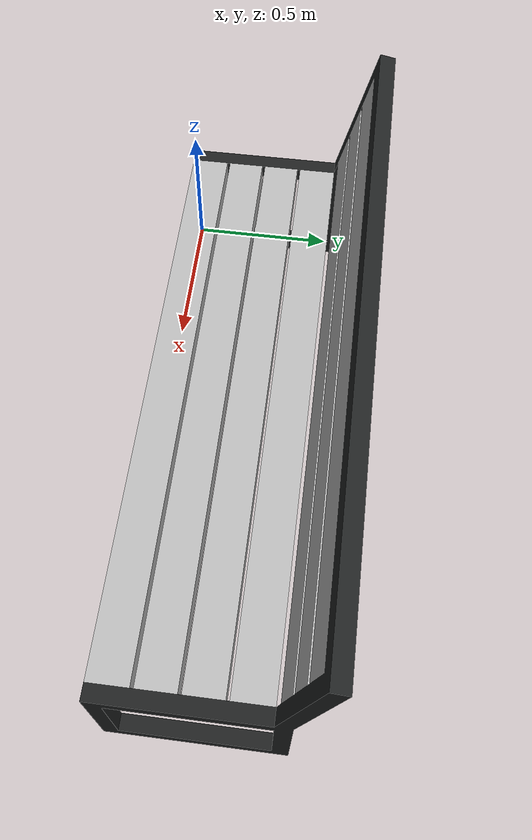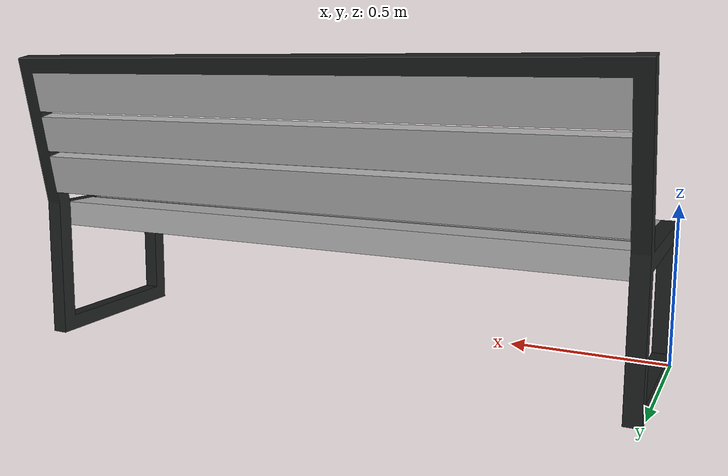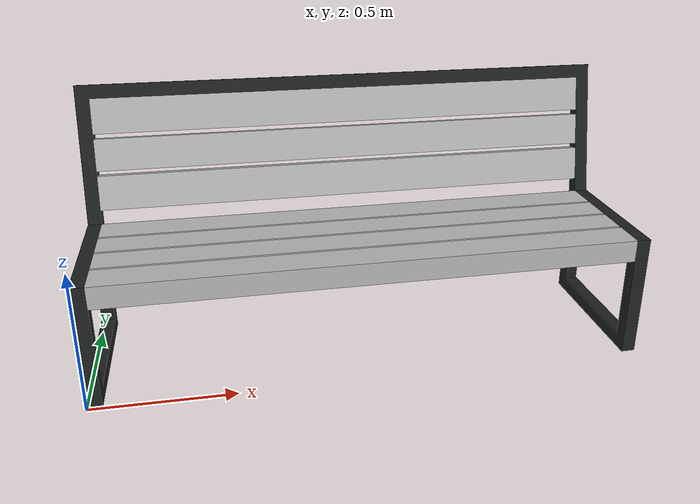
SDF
<?xml version="1.0" ?>
<sdf version="1.5">
  <model name="park_bench">
    <static>true</static>
    <link name="bench_link">
        <collision name="bench_collision">
         <geometry>
            <mesh>
              <uri>model://parkbench/meshes/model.dae</uri>
            </mesh>
            <origin xyz="0 0 0" rpy="0 0 0"/>
        </geometry>
      </collision>

      <visual name="bench_mesh">
        <cast_shadows>true</cast_shadows>
        <geometry>
            <mesh>
                <uri>model://parkbench/meshes/model.dae</uri>
            </mesh>
        </geometry>
      </visual>
    </link>
  </model>
</sdf>
